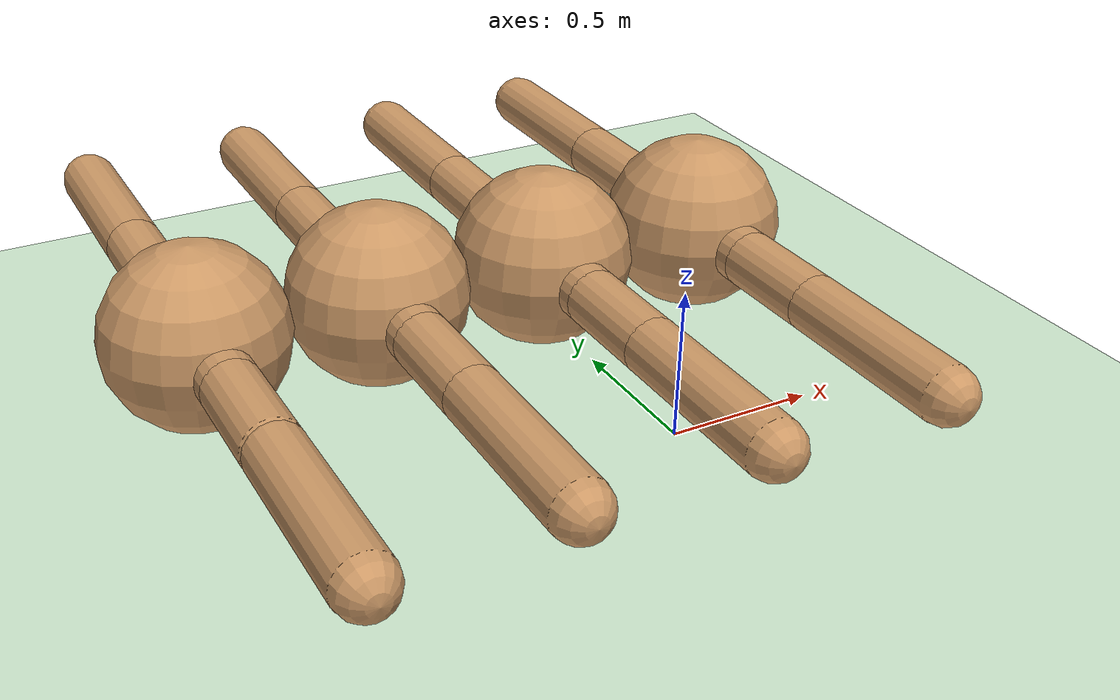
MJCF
<mujoco model="centipede">
  <compiler angle="degree" coordinate="local" inertiafromgeom="true"/>
  <option integrator="RK4" timestep="0.01"/>
  <custom>
    <numeric data="0.0 0.0 0.75 1.0 0.0 0.0 0.0 0.0 1.0 0.0 1.0 0.0 0.0 0.0 1.0 0.0 1.0 0.0 0.0 0.0 1.0 0.0 1.0" name="init_qpos"/>
  </custom>
  <default>
    <joint armature="1" damping="1" limited="true"/>
    <geom conaffinity="0" condim="3" density="50.0" friction="1 0.5 0.5" margin="0.01" rgba="0.8 0.6 0.4 1"/>
  </default>
  <asset>
    <texture builtin="gradient" height="100" rgb1="1 1 1" rgb2="0 0 0" type="skybox" width="100"/>
    <texture builtin="flat" height="1278" mark="cross" markrgb="1 1 1" name="texgeom" random="0.01" rgb1="0.8 0.6 0.4" rgb2="0.8 0.6 0.4" type="cube" width="127"/>
    <texture builtin="checker" height="100" name="texplane" rgb1="0 0 0" rgb2="0.8 0.8 0.8" type="2d" width="100" mark="edge" markrgb=".2 .5 .3"/>
    <material name="MatPlane" reflectance="0.5" shininess="1" specular="1" texrepeat="400 400" texture="texplane"/>
    <material name="geom" texture="texgeom" texuniform="true"/>
  </asset>
  <worldbody>
    <light cutoff="100" diffuse="1 1 1" dir="-0 0 -1" directional="true" exponent="1" pos="0 0 1.3" specular=".1 .1 .1" mode="trackcom"/>
    <geom conaffinity="1" condim="3" material="MatPlane" name="floor" pos="0 0 0" rgba="0.8 0.9 0.8 1" size="600 600 40" type="plane"/>

    <body name="torso" pos="0 0 0.75">
      <camera name="track" mode="trackcom" pos="0 -3 0.3" xyaxes="1 0 0 0 0 1"/>
      <geom name="torso_geom" pos="0 0 0" size="0.25" type="sphere"/>
      <joint armature="0" damping="0" limited="false" margin="0.01" name="root" pos="0 0 0" type="free"/>

      <!-- Left Leg (y positive) -->
      <body name="left_leg_0" pos="0 0 0">
         <geom fromto="0.0 0.0 0.0 0.0 0.28 0.0" name="aux_left_0_geom" size="0.08" type="capsule" />
         <body name="aux_left_0" pos="0.0 0.28 0">
             <joint axis="0 0 1" name="hip_left_0" pos="0.0 0.0 0.0" range="-30 30" type="hinge"/>
             <geom fromto="0.0 0.0 0.0 0.0 0.28 0.0" name="left_leg_0_geom" size="0.08" type="capsule" />
             <body pos="0.0 0.28 0">
                 <joint axis="-1 0 0" name="ankle_left_0" pos="0.0 0.0 0.0" range="30 70" type="hinge"/>
                 <geom fromto="0.0 0.0 0.0 0.0 0.5 0.0" name="left_ankle_0_geom" size="0.08" type="capsule" />
             </body>
         </body>
      </body>

      <!-- Right Leg (y negative) -->
      <body name="right_leg_0" pos="0 0 0">
         <geom fromto="0.0 0.0 0.0 0.0 -0.28 0.0" name="aux_right_0_geom" size="0.08" type="capsule" />
         <body name="aux_right_0" pos="0.0 -0.28 0">
             <joint axis="0 0 -1" name="hip_right_0" pos="0.0 0.0 0.0" range="-30 30" type="hinge"/>
             <geom fromto="0.0 0.0 0.0 0.0 -0.28 0.0" name="right_leg_0_geom" size="0.08" type="capsule" />
             <body pos="0.0 -0.28 0">
                 <joint axis="1 0 0" name="ankle_right_0" pos="0.0 0.0 0.0" range="30 70" type="hinge"/>
                 <geom fromto="0.0 0.0 0.0 0.0 -0.5 0.0" name="right_ankle_0_geom" size="0.08" type="capsule" />
             </body>
         </body>
      </body>

      <!-- Torso 1 (Behind, -X) -->
      <body name="torso_1" pos="-0.5 0 0">
        <joint axis="0 0 1" name="connector_rl_1" pos="0.3 0 0" range="-20 20" type="hinge"/>
        <joint axis="0 1 0" name="connector_ud_1" pos="0.3 0 0" range="-20 20" type="hinge"/>
        <geom name="torso_1_geom" pos="0 0 0" size="0.25" type="sphere"/>

       <!-- Left Leg 1 -->
      <body name="left_leg_1" pos="0 0 0">
         <geom fromto="0.0 0.0 0.0 0.0 0.28 0.0" name="aux_left_1_geom" size="0.08" type="capsule" />
         <body name="aux_left_1" pos="0.0 0.28 0">
             <joint axis="0 0 1" name="hip_left_1" pos="0.0 0.0 0.0" range="-30 30" type="hinge"/>
             <geom fromto="0.0 0.0 0.0 0.0 0.28 0.0" name="left_leg_1_geom" size="0.08" type="capsule" />
             <body pos="0.0 0.28 0">
                 <joint axis="-1 0 0" name="ankle_left_1" pos="0.0 0.0 0.0" range="30 70" type="hinge"/>
                 <geom fromto="0.0 0.0 0.0 0.0 0.5 0.0" name="left_ankle_1_geom" size="0.08" type="capsule" />
             </body>
         </body>
      </body>
             <!-- Right Leg 1 -->
      <body name="right_leg_1" pos="0 0 0">
         <geom fromto="0.0 0.0 0.0 0.0 -0.28 0.0" name="aux_right_1_geom" size="0.08" type="capsule" />
         <body name="aux_right_1" pos="0.0 -0.28 0">
             <joint axis="0 0 -1" name="hip_right_1" pos="0.0 0.0 0.0" range="-30 30" type="hinge"/>
             <geom fromto="0.0 0.0 0.0 0.0 -0.28 0.0" name="right_leg_1_geom" size="0.08" type="capsule" />
             <body pos="0.0 -0.28 0">
                 <joint axis="1 0 0" name="ankle_right_1" pos="0.0 0.0 0.0" range="30 70" type="hinge"/>
                 <geom fromto="0.0 0.0 0.0 0.0 -0.5 0.0" name="right_ankle_1_geom" size="0.08" type="capsule" />
             </body>
         </body>
      </body>
      <!-- Torso 2 (Behind, -X) -->
      <body name="torso_2" pos="-0.5 0 0">
        <joint axis="0 0 1" name="connector_rl_2" pos="0.3 0 0" range="-20 20" type="hinge"/>
        <joint axis="0 1 0" name="connector_ud_2" pos="0.3 0 0" range="-20 20" type="hinge"/>
        <geom name="torso_2_geom" pos="0 0 0" size="0.25" type="sphere"/>

        <!-- Left Leg 2 -->
      <body name="left_leg_2" pos="0 0 0">
         <geom fromto="0.0 0.0 0.0 0.0 0.28 0.0" name="aux_left_2_geom" size="0.08" type="capsule" />
         <body name="aux_left_2" pos="0.0 0.28 0">
             <joint axis="0 0 1" name="hip_left_2" pos="0.0 0.0 0.0" range="-30 30" type="hinge"/>
             <geom fromto="0.0 0.0 0.0 0.0 0.28 0.0" name="left_leg_2_geom" size="0.08" type="capsule" />
             <body pos="0.0 0.28 0">
                 <joint axis="-1 0 0" name="ankle_left_2" pos="0.0 0.0 0.0" range="30 70" type="hinge"/>
                 <geom fromto="0.0 0.0 0.0 0.0 0.5 0.0" name="left_ankle_2_geom" size="0.08" type="capsule" />
             </body>
         </body>
      </body>
        <!-- Right Leg 2 -->
      <body name="right_leg_2" pos="0 0 0">
         <geom fromto="0.0 0.0 0.0 0.0 -0.28 0.0" name="aux_right_2_geom" size="0.08" type="capsule" />
         <body name="aux_right_2" pos="0.0 -0.28 0">
             <joint axis="0 0 -1" name="hip_right_2" pos="0.0 0.0 0.0" range="-30 30" type="hinge"/>
             <geom fromto="0.0 0.0 0.0 0.0 -0.28 0.0" name="right_leg_2_geom" size="0.08" type="capsule" />
             <body pos="0.0 -0.28 0">
                 <joint axis="1 0 0" name="ankle_right_2" pos="0.0 0.0 0.0" range="30 70" type="hinge"/>
                 <geom fromto="0.0 0.0 0.0 0.0 -0.5 0.0" name="right_ankle_2_geom" size="0.08" type="capsule" />
             </body>
         </body>
      </body>

      <!-- Torso 3 (Behind, -X) -->
      <body name="torso_3" pos="-0.5 0 0">
        <joint axis="0 0 1" name="connector_rl_3" pos="0.3 0 0" range="-20 20" type="hinge"/>
        <joint axis="0 1 0" name="connector_ud_3" pos="0.3 0 0" range="-20 20" type="hinge"/>
        <geom name="torso_3_geom" pos="0 0 0" size="0.25" type="sphere"/>

       <!-- Left Leg 3 -->
      <body name="left_leg_3" pos="0 0 0">
         <geom fromto="0.0 0.0 0.0 -0.0 0.28 0.0" name="aux_left_3_geom" size="0.08" type="capsule" />
         <body name="aux_left_3" pos="-0.0 0.28 0">
             <joint axis="0 0 1" name="hip_left_3" pos="0.0 0.0 0.0" range="-30 30" type="hinge"/>
             <geom fromto="0.0 0.0 0.0 -0.0 0.28 0.0" name="left_leg_3_geom" size="0.08" type="capsule" />
             <body pos="-0.0 0.28 0">
                 <joint axis="-1 0 0" name="ankle_left_3" pos="0.0 0.0 0.0" range="30 70" type="hinge"/>
                 <geom fromto="0.0 0.0 0.0 0.0 0.5 0.0" name="left_ankle_3_geom" size="0.08" type="capsule" />
             </body>
         </body>
      </body>
             <!-- Right Leg 3 -->
      <body name="right_leg_3" pos="0 0 0">
         <geom fromto="0.0 0.0 0.0 -0.0 -0.28 0.0" name="aux_right_3_geom" size="0.08" type="capsule" />
         <body name="aux_right_3" pos="-0.0 -0.28 0">
             <joint axis="0 0 -1" name="hip_right_3" pos="0.0 0.0 0.0" range="-30 30" type="hinge"/>
             <geom fromto="0.0 0.0 0.0 -0. -0.28 0.0" name="right_leg_3_geom" size="0.08" type="capsule" />
             <body pos="-0.0 -0.3 0">
                 <joint axis="1 0 0" name="ankle_right_3" pos="0.0 0.0 0.0" range="30 70" type="hinge"/>
                 <geom fromto="0.0 0.0 0.0 0.0 -0.5 0.0" name="right_ankle_3_geom" size="0.08" type="capsule" />
             </body>
         </body>
      </body>

      </body>
      </body>
      </body>

    </body>
  </worldbody>
  <actuator>
      <!-- Motors -->
      <!-- Legs 0 -->
      <motor name="hip_left_0" ctrllimited="true" ctrlrange="-1.0 1.0" joint="hip_left_0" gear="75"/>
      <motor name="ankle_left_0" ctrllimited="true" ctrlrange="-1.0 1.0" joint="ankle_left_0" gear="75"/>
      <motor name="hip_right_0" ctrllimited="true" ctrlrange="-1.0 1.0" joint="hip_right_0" gear="75"/>
      <motor name="ankle_right_0" ctrllimited="true" ctrlrange="-1.0 1.0" joint="ankle_right_0" gear="75"/>

      <!-- Torso 1 Joints -->
      <motor name="connector_rl_1" ctrllimited="true" ctrlrange="-1.0 1.0" joint="connector_rl_1" gear="50"/>
      <motor name="connector_ud_1" ctrllimited="true" ctrlrange="-1.0 1.0" joint="connector_ud_1" gear="50"/>

       <!-- Legs 1 -->
      <motor name="hip_left_1" ctrllimited="true" ctrlrange="-1.0 1.0" joint="hip_left_1" gear="75"/>
      <motor name="ankle_left_1" ctrllimited="true" ctrlrange="-1.0 1.0" joint="ankle_left_1" gear="75"/>
      <motor name="hip_right_1" ctrllimited="true" ctrlrange="-1.0 1.0" joint="hip_right_1" gear="75"/>
      <motor name="ankle_right_1" ctrllimited="true" ctrlrange="-1.0 1.0" joint="ankle_right_1" gear="75"/>

      <!-- Torso 2 Joints -->
      <motor name="connector_rl_2" ctrllimited="true" ctrlrange="-1.0 1.0" joint="connector_rl_2" gear="50"/>
      <motor name="connector_ud_2" ctrllimited="true" ctrlrange="-1.0 1.0" joint="connector_ud_2" gear="50"/>

       <!-- Legs 2 -->
      <motor name="hip_left_2" ctrllimited="true" ctrlrange="-1.0 1.0" joint="hip_left_2" gear="75"/>
      <motor name="ankle_left_2" ctrllimited="true" ctrlrange="-1.0 1.0" joint="ankle_left_2" gear="75"/>
      <motor name="hip_right_2" ctrllimited="true" ctrlrange="-1.0 1.0" joint="hip_right_2" gear="75"/>
      <motor name="ankle_right_2" ctrllimited="true" ctrlrange="-1.0 1.0" joint="ankle_right_2" gear="75"/>

      <!-- Torso 3 Joints -->
      <motor name="connector_rl_3" ctrllimited="true" ctrlrange="-1.0 1.0" joint="connector_rl_3" gear="50"/>
      <motor name="connector_ud_3" ctrllimited="true" ctrlrange="-1.0 1.0" joint="connector_ud_3" gear="50"/>

       <!-- Legs 3 -->
      <motor name="hip_left_3" ctrllimited="true" ctrlrange="-1.0 1.0" joint="hip_left_3" gear="75"/>
      <motor name="ankle_left_3" ctrllimited="true" ctrlrange="-1.0 1.0" joint="ankle_left_3" gear="75"/>
      <motor name="hip_right_3" ctrllimited="true" ctrlrange="-1.0 1.0" joint="hip_right_3" gear="75"/>
      <motor name="ankle_right_3" ctrllimited="true" ctrlrange="-1.0 1.0" joint="ankle_right_3" gear="75"/>

  </actuator>
</mujoco>
